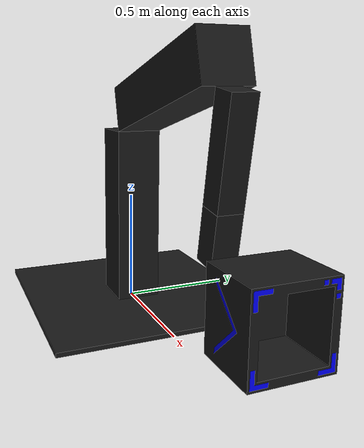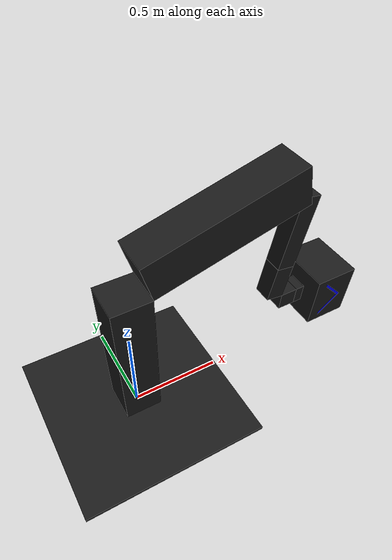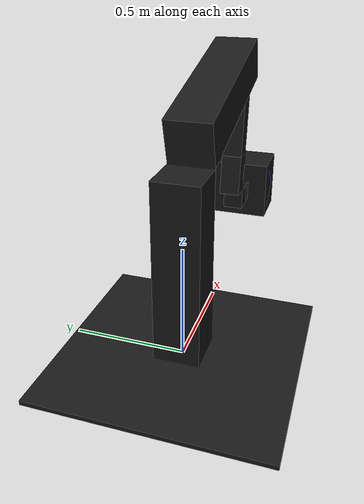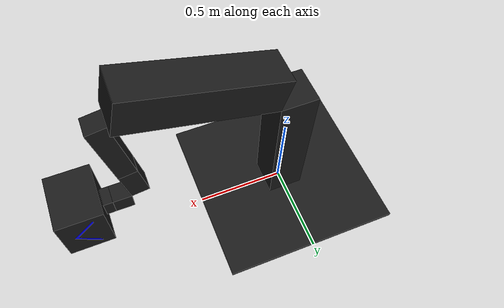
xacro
<?xml version="1.0"?>
<robot xmlns:xacro="http://www.ros.org/wiki/xacro" name="exchanger">
    <xacro:arg name="initial_positions_file" default="initial_positions.yaml" />

    <!-- Import exchanger urdf file -->
    <xacro:include filename="$(find engineer_description)/urdf/exchanger/engineer_exchanger.urdf.xacro" />

    <!-- Import control_xacro -->
    <xacro:include filename="exchanger.ros2_control.xacro" />

    <xacro:exchanger_ros2_control name="FakeSystem" initial_positions_file="$(arg initial_positions_file)"/>

</robot>

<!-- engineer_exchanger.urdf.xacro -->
<robot xmlns:xacro="http://www.ros.org/wiki/xacro" name="exchanger">

  <!-- Import parameters -->
  <xacro:include filename="$(find engineer_description)/urdf/exchanger/engineer_exchanger_parameters.xacro" />

  <!-- Import arm -->
  <xacro:include filename="$(find engineer_description)/urdf/exchanger/engineer_exchanger_arm.urdf.xacro"/>

  <!-- Import plugin -->
  <xacro:include filename="$(find engineer_description)/urdf/exchanger/engineer_exchanger_plugin.gazebo"/>

  <link name="world"/>
  <joint name="world_ebase_joint" type="fixed">
    <origin rpy="0 0 0" xyz="0 0 0"/>
    <parent link="world"/>
    <child link="ebase_link"/>
    <axis xyz="0 0 0"/>
  </joint>

  <link name="ebase_link">
    <visual>
     <origin rpy="0 0 0" xyz="0 0 0.01"/>
      <geometry>
        <box size="1 1 0.02"/>
      </geometry>
      <material name="">
        <color rgba="0.1 0.1 0.1 1"/>
      </material>
    </visual>
    <collision>
      <origin rpy="0 0 0" xyz="0 0 0.01"/>
      <geometry>
        <box size="1 1 0.02"/>
      </geometry>
    </collision>
    <inertial>
      <origin rpy="0 0 0" xyz="0 0 0.01"/>
      <mass value="32"/>
      <inertia ixx="2.66773" ixy="0" ixz="0" iyy="2.66773" iyz="0" izz="5.33333"/>
    </inertial>
  </link>

  <xacro:engineer_exchanger_arm prefix="elink1" parent="ebase_link" joint_origin="${elink1_joint}" limit="${elink1_limits}"
                                link_origin="${elink1_link}" inertial_origin="${elink1_inertial}" m="32" a="0.2" h="0.8" />
  <xacro:engineer_exchanger_arm prefix="elink2" parent="elink1" joint_origin="${elink2_joint}" limit="${elink2_limits}"
                                link_origin="${elink2_link}" inertial_origin="${elink2_inertial}" m="32" a="0.2" h="0.8" />
  <xacro:engineer_exchanger_arm prefix="elink3" parent="elink2" joint_origin="${elink3_joint}" limit="${elink3_limits}"
                                link_origin="${elink3_link}" inertial_origin="${elink3_inertial}" m="4" a="0.1" h="0.4" />
  <xacro:engineer_exchanger_arm prefix="elink4" parent="elink3" joint_origin="${elink4_joint}" limit="${elink4_limits}"
                                link_origin="${elink4_link}" inertial_origin="${elink4_inertial}" m="2" a="0.1" h="0.2" />
  <xacro:engineer_exchanger_arm prefix="elink5" parent="elink4" joint_origin="${elink5_joint}" limit="${elink5_limits}"
                                link_origin="${elink5_link}" inertial_origin="${elink5_inertial}" m="1" a="0.1" h="0.1" />
  <xacro:engineer_exchanger_arm prefix="elink6" parent="elink5" joint_origin="${elink6_joint}" limit="${elink6_limits}"
                                link_origin="${elink6_link}" inertial_origin="${elink6_inertial}" m="0.5" a="0.1" h="0.05" />

  <link name="ore">
    <inertial>
      <origin xyz="0.094742 9.16E-05 9.16E-05" rpy="0 0 0" />
      <mass value="9.723" />
      <inertia ixx="0.20405" ixy="-0.00011824" ixz="-0.00011824" iyy="0.15607" iyz="-0.0001037" izz="0.153" />
    </inertial>
    <visual>
      <origin xyz="0 0 0" rpy="0 0 0" />
      <geometry>
        <mesh filename="file://$(find engineer_description)/meshes/ore.STL" />
      </geometry>
      <material name="">
        <color rgba="0.1 0.1 0.1 1" />
      </material>
    </visual>
    <collision>
      <origin xyz="0 0 0" rpy="0 0 0" />
      <geometry>
        <mesh filename="file://$(find engineer_description)/meshes/ore.STL" />
      </geometry>
    </collision>
  </link>
  <joint name="ore_joint" type="fixed">
    <origin xyz="0 0 0.025" rpy="0 -1.5708 0" />
    <parent link="elink6" />
    <child link="ore" />
    <axis xyz="0 0 0" />
  </joint>

  <link name="light">
    <inertial>
      <origin xyz="-0.14286 9.5298E-18 3.4312E-18" rpy="0 0 0" />
      <mass value="10.08" />
      <inertia ixx="0.21341" ixy="1.4488E-17" ixz="-1.4271E-17" iyy="0.16211" iyz="-1.4162E-17" izz="0.16211" />
    </inertial>
    <visual>
      <origin xyz="0 0 0" rpy="0 0 0" />
      <geometry>
        <mesh filename="file://$(find engineer_description)/meshes/light.STL" />
      </geometry>
      <material name="">
        <color rgba="0 0 1 1" />
        <emissive>1 0 0 1</emissive>
      </material>
    </visual>
    <collision>
      <origin xyz="0 0 0" rpy="0 0 0" />
      <geometry>
        <mesh filename="file://$(find engineer_description)/meshes/light.STL" />
      </geometry>
    </collision>
  </link>
  <joint name="light_joint" type="fixed">
    <origin xyz="0.24 0 0" rpy="0 0 0" />
    <parent link="ore" />
    <child link="light" />
    <axis xyz="0 0 0" />
  </joint>

  <xacro:engineer_exchanger_gazebo prefix="ebase_link" color="Black"/>
  <xacro:engineer_exchanger_gazebo prefix="elink1" color="Black"/>
  <xacro:engineer_exchanger_gazebo prefix="elink2" color="Black"/>
  <xacro:engineer_exchanger_gazebo prefix="elink3" color="Black"/>
  <xacro:engineer_exchanger_gazebo prefix="elink4" color="Black"/>
  <xacro:engineer_exchanger_gazebo prefix="elink5" color="Black"/>
  <xacro:engineer_exchanger_gazebo prefix="elink6" color="Black"/>
  <xacro:engineer_exchanger_gazebo prefix="ore" color="Black"/>
  <gazebo reference="light">
    <visual name="">
      <geometry>
        <mesh>
          <uri>file://$(find engineer_description)/meshes/light.STL</uri>
        </mesh>
      </geometry>
      <material>
        <ambient>0 0 0 1</ambient>
        <diffuse>0 0 0 1</diffuse>
        <specular>0 0 0 0</specular>
        <emissive>1 0 0 1</emissive>
      </material>
    </visual>
  </gazebo>

</robot>

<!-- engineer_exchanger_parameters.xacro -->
<robot xmlns:xacro="http://www.ros.org/wiki/xacro">

  <!-- base_link参数 -->
  <xacro:property name="ebase_link_joint" value="${[0, 0, 0, 0, 0, 0]}"/>
  <xacro:property name="ebase_link_limits" value="${[0, 0]}"/>
  <xacro:property name="ebase_link_link" value="${[0, 0, 0.01, 0, 0, 0]}"/>
  <xacro:property name="ebase_link_inertial" value="${[0, 0, 0.01]}"/>

  <!-- link1参数 -->
  <xacro:property name="elink1_joint" value="${[0, 0, 0.02, 0, 0, 0]}"/>
  <xacro:property name="elink1_limits" value="${[-1.57, 1.57]}"/>
  <xacro:property name="elink1_link" value="${[0, 0, 0.4, 0, 0, 0]}"/>
  <xacro:property name="elink1_inertial" value="${[-1.3878E-17, 0, 0.41]}"/>

  <!-- link2参数 -->
  <xacro:property name="elink2_joint" value="${[0.1, 0, 0.8, -1.5708, 1.3074, 0]}"/>
  <xacro:property name="elink2_limits" value="${[-1.22, 1.57]}"/>
  <xacro:property name="elink2_link" value="${[-0.1, -0.4, 0, 0, 1.5708, 1.5708]}"/>
  <xacro:property name="elink2_inertial" value="${[-0.1, -0.4, 0]}"/>

  <!-- link3参数 -->
  <xacro:property name="elink3_joint" value="${[0, -0.8, 0, 0, 0, 1.9913]}"/>
  <xacro:property name="elink3_limits" value="${[-1.57, 1.01]}"/>
  <xacro:property name="elink3_link" value="${[-0.05, -0.2, 0, 0, 1.5708, 1.5708]}"/>
  <xacro:property name="elink3_inertial" value="${[-0.05, -0.2, 0]}"/>

  <!-- link4参数 -->
  <xacro:property name="elink4_joint" value="${[-0.05, -0.4, 0, 1.5708, 0, 0]}"/>
  <xacro:property name="elink4_limits" value="${[-3.14, 3.14]}"/>
  <xacro:property name="elink4_link" value="${[0, 0, 0.1, 0, 0, 0]}"/>
  <xacro:property name="elink4_inertial" value="${[-1.1102E-16, -1.7997E-17, 0.1]}"/>

  <!-- link5参数 -->
  <xacro:property name="elink5_joint" value="${[-0.05, 0, 0.2, -1.5708, -1.728, 0]}"/>
  <xacro:property name="elink5_limits" value="${[-1.01, 1.5708]}"/>
  <xacro:property name="elink5_link" value="${[0.05, -0.05, 0, 0, 1.5708, 0]}"/>
  <xacro:property name="elink5_inertial" value="${[-0.05, -0.05, 3.13E-19]}"/>

  <!-- link6参数 -->
  <xacro:property name="elink6_joint" value="${[0.05, -0.125, 0, 1.5708, 0, 0]}"/>
  <xacro:property name="elink6_limits" value="${[-1.5708, 1.5708]}"/>
  <xacro:property name="elink6_link" value="${[0, 0, 0, 0, 0, 0]}"/>
  <xacro:property name="elink6_inertial" value="${[-6.1756E-16, 3.0762E-16, 0.14137]}"/>

</robot>

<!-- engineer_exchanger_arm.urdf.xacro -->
<robot xmlns:xacro="http://www.ros.org/wiki/xacro">

  <xacro:include filename="$(find engineer_description)/urdf/exchanger/engineer_exchanger.gazebo"/>

  <xacro:macro name="engineer_exchanger_arm" params="prefix parent joint_origin limit link_origin inertial_origin m a h">
    <joint name="${prefix}_joint" type="revolute">
      <parent link="${parent}"/>
      <child link="${prefix}"/>
      <origin xyz="${joint_origin[0]} ${joint_origin[1]} ${joint_origin[2]}" rpy="${joint_origin[3]} ${joint_origin[4]} ${joint_origin[5]}"/>
      <axis xyz="0 0 1"/>
      <limit lower="${limit[0]}" upper="${limit[1]}" effort="0" velocity="0" />
    </joint>

    <link name="${prefix}">
      <visual>
        <origin xyz="${link_origin[0]} ${link_origin[1]} ${link_origin[2]}" rpy="${link_origin[3]} ${link_origin[4]} ${link_origin[5]}" />
        <geometry>
          <box size="${a} ${a} ${h}" />
        </geometry>
        <material name="">
          <color rgba="0.1 0.1 0.1 1" />
        </material>
      </visual>
      <collision>
        <origin xyz="${link_origin[0]} ${link_origin[1]} ${link_origin[2]}" rpy="${link_origin[3]} ${link_origin[4]} ${link_origin[5]}" />
        <geometry>
          <box size="${a} ${a} ${h}" />
        </geometry>
      </collision>
      <inertial>
        <origin xyz="${inertial_origin[0]} ${inertial_origin[1]} ${inertial_origin[2]}" rpy="0 0 0" />
        <mass value="${m}" />
        <inertia ixx="${1/12 * m * (a*a + h*h)}" ixy="0" ixz="0"
                 iyy="${1/12 * m * (a*a + h*h)}" iyz="0"
                 izz="${1/6 * m * a*a}" />
      </inertial>
    </link>
  </xacro:macro>

</robot>
